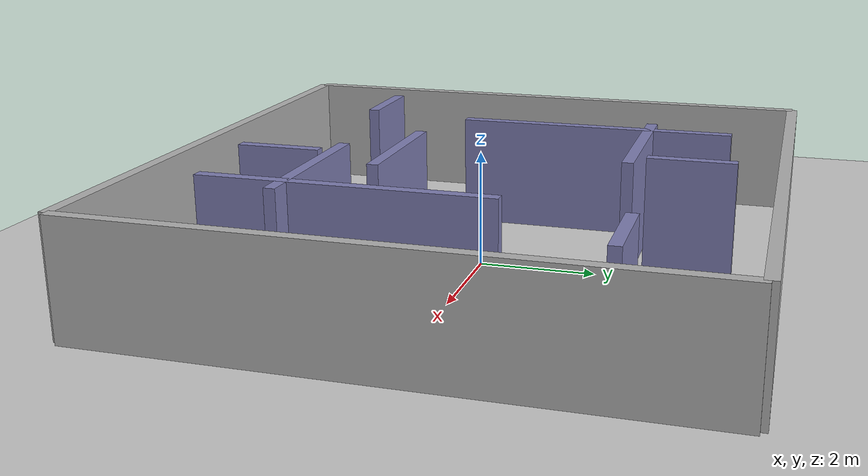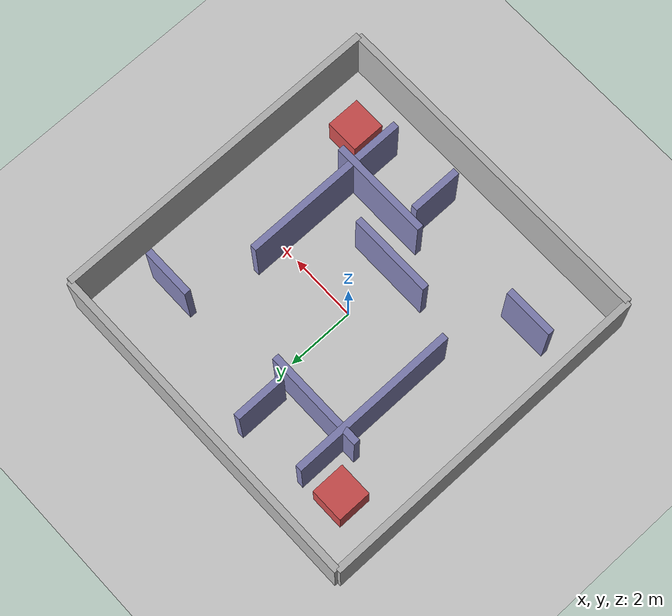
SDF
<?xml version="1.0" ?>
<sdf version="1.6">
  <world name="hallway_maze">

    <!-- Physics settings -->
    <physics type="ode">
      <real_time_update_rate>1000.0</real_time_update_rate>
      <max_step_size>0.001</max_step_size>
      <real_time_factor>1</real_time_factor>
    </physics>

    <!-- Lighting -->
    <include>
      <uri>model://sun</uri>
    </include>

    <!-- Ground plane -->
    <include>
      <uri>model://ground_plane</uri>
    </include>

    <!-- Outer walls - forming a square perimeter (10m x 10m) -->
    <!-- North wall -->
    <model name="wall_north">
      <pose>0 5 1 0 0 0</pose>
      <static>true</static>
      <link name="link">
        <collision name="collision">
          <geometry>
            <box>
              <size>10 0.2 2</size>
            </box>
          </geometry>
        </collision>
        <visual name="visual">
          <geometry>
            <box>
              <size>10 0.2 2</size>
            </box>
          </geometry>
          <material>
            <ambient>0.7 0.7 0.7 1</ambient>
            <diffuse>0.7 0.7 0.7 1</diffuse>
          </material>
        </visual>
      </link>
    </model>

    <!-- South wall -->
    <model name="wall_south">
      <pose>0 -5 1 0 0 0</pose>
      <static>true</static>
      <link name="link">
        <collision name="collision">
          <geometry>
            <box>
              <size>10 0.2 2</size>
            </box>
          </geometry>
        </collision>
        <visual name="visual">
          <geometry>
            <box>
              <size>10 0.2 2</size>
            </box>
          </geometry>
          <material>
            <ambient>0.7 0.7 0.7 1</ambient>
            <diffuse>0.7 0.7 0.7 1</diffuse>
          </material>
        </visual>
      </link>
    </model>

    <!-- East wall -->
    <model name="wall_east">
      <pose>5 0 1 0 0 0</pose>
      <static>true</static>
      <link name="link">
        <collision name="collision">
          <geometry>
            <box>
              <size>0.2 10 2</size>
            </box>
          </geometry>
        </collision>
        <visual name="visual">
          <geometry>
            <box>
              <size>0.2 10 2</size>
            </box>
          </geometry>
          <material>
            <ambient>0.7 0.7 0.7 1</ambient>
            <diffuse>0.7 0.7 0.7 1</diffuse>
          </material>
        </visual>
      </link>
    </model>

    <!-- West wall -->
    <model name="wall_west">
      <pose>-5 0 1 0 0 0</pose>
      <static>true</static>
      <link name="link">
        <collision name="collision">
          <geometry>
            <box>
              <size>0.2 10 2</size>
            </box>
          </geometry>
        </collision>
        <visual name="visual">
          <geometry>
            <box>
              <size>0.2 10 2</size>
            </box>
          </geometry>
          <material>
            <ambient>0.7 0.7 0.7 1</ambient>
            <diffuse>0.7 0.7 0.7 1</diffuse>
          </material>
        </visual>
      </link>
    </model>

    <!-- Inner hallway walls creating a square maze pattern -->
    <!-- Vertical wall 1 (left side) -->
    <model name="hallway_wall_1">
      <pose>-2.5 1.5 1 0 0 0</pose>
      <static>true</static>
      <link name="link">
        <collision name="collision">
          <geometry>
            <box>
              <size>0.2 5 2</size>
            </box>
          </geometry>
        </collision>
        <visual name="visual">
          <geometry>
            <box>
              <size>0.2 5 2</size>
            </box>
          </geometry>
          <material>
            <ambient>0.5 0.5 0.7 1</ambient>
            <diffuse>0.5 0.5 0.7 1</diffuse>
          </material>
        </visual>
      </link>
    </model>

    <!-- Vertical wall 2 (right side) -->
    <model name="hallway_wall_2">
      <pose>2.5 -1.5 1 0 0 0</pose>
      <static>true</static>
      <link name="link">
        <collision name="collision">
          <geometry>
            <box>
              <size>0.2 5 2</size>
            </box>
          </geometry>
        </collision>
        <visual name="visual">
          <geometry>
            <box>
              <size>0.2 5 2</size>
            </box>
          </geometry>
          <material>
            <ambient>0.5 0.5 0.7 1</ambient>
            <diffuse>0.5 0.5 0.7 1</diffuse>
          </material>
        </visual>
      </link>
    </model>

    <!-- Horizontal wall 1 (top) -->
    <model name="hallway_wall_3">
      <pose>-1.5 2.5 1 0 0 0</pose>
      <static>true</static>
      <link name="link">
        <collision name="collision">
          <geometry>
            <box>
              <size>3 0.2 2</size>
            </box>
          </geometry>
        </collision>
        <visual name="visual">
          <geometry>
            <box>
              <size>3 0.2 2</size>
            </box>
          </geometry>
          <material>
            <ambient>0.5 0.5 0.7 1</ambient>
            <diffuse>0.5 0.5 0.7 1</diffuse>
          </material>
        </visual>
      </link>
    </model>

    <!-- Horizontal wall 2 (bottom) -->
    <model name="hallway_wall_4">
      <pose>1.5 -2.5 1 0 0 0</pose>
      <static>true</static>
      <link name="link">
        <collision name="collision">
          <geometry>
            <box>
              <size>3 0.2 2</size>
            </box>
          </geometry>
        </collision>
        <visual name="visual">
          <geometry>
            <box>
              <size>3 0.2 2</size>
            </box>
          </geometry>
          <material>
            <ambient>0.5 0.5 0.7 1</ambient>
            <diffuse>0.5 0.5 0.7 1</diffuse>
          </material>
        </visual>
      </link>
    </model>

    <!-- Center obstacle wall (horizontal) -->
    <model name="hallway_wall_5">
      <pose>0 -1.5 1 0 0 0</pose>
      <static>true</static>
      <link name="link">
        <collision name="collision">
          <geometry>
            <box>
              <size>2.5 0.2 2</size>
            </box>
          </geometry>
        </collision>
        <visual name="visual">
          <geometry>
            <box>
              <size>2.5 0.2 2</size>
            </box>
          </geometry>
          <material>
            <ambient>0.5 0.5 0.7 1</ambient>
            <diffuse>0.5 0.5 0.7 1</diffuse>
          </material>
        </visual>
      </link>
    </model>

    <!-- Additional short walls for complexity -->
    <model name="hallway_wall_6">
      <pose>-3.5 -3 1 0 0 0</pose>
      <static>true</static>
      <link name="link">
        <collision name="collision">
          <geometry>
            <box>
              <size>1.5 0.2 2</size>
            </box>
          </geometry>
        </collision>
        <visual name="visual">
          <geometry>
            <box>
              <size>1.5 0.2 2</size>
            </box>
          </geometry>
          <material>
            <ambient>0.5 0.5 0.7 1</ambient>
            <diffuse>0.5 0.5 0.7 1</diffuse>
          </material>
        </visual>
      </link>
    </model>

    <model name="hallway_wall_7">
      <pose>3.5 3 1 0 0 0</pose>
      <static>true</static>
      <link name="link">
        <collision name="collision">
          <geometry>
            <box>
              <size>1.5 0.2 2</size>
            </box>
          </geometry>
        </collision>
        <visual name="visual">
          <geometry>
            <box>
              <size>1.5 0.2 2</size>
            </box>
          </geometry>
          <material>
            <ambient>0.5 0.5 0.7 1</ambient>
            <diffuse>0.5 0.5 0.7 1</diffuse>
          </material>
        </visual>
      </link>
    </model>

    <!-- Vertical short walls -->
    <model name="hallway_wall_8">
      <pose>-0.5 3.5 1 0 0 0</pose>
      <static>true</static>
      <link name="link">
        <collision name="collision">
          <geometry>
            <box>
              <size>0.2 1.5 2</size>
            </box>
          </geometry>
        </collision>
        <visual name="visual">
          <geometry>
            <box>
              <size>0.2 1.5 2</size>
            </box>
          </geometry>
          <material>
            <ambient>0.5 0.5 0.7 1</ambient>
            <diffuse>0.5 0.5 0.7 1</diffuse>
          </material>
        </visual>
      </link>
    </model>

    <model name="hallway_wall_9">
      <pose>0.5 -3.5 1 0 0 0</pose>
      <static>true</static>
      <link name="link">
        <collision name="collision">
          <geometry>
            <box>
              <size>0.2 1.5 2</size>
            </box>
          </geometry>
        </collision>
        <visual name="visual">
          <geometry>
            <box>
              <size>0.2 1.5 2</size>
            </box>
          </geometry>
          <material>
            <ambient>0.5 0.5 0.7 1</ambient>
            <diffuse>0.5 0.5 0.7 1</diffuse>
          </material>
        </visual>
      </link>
    </model>

    <!-- Corner obstacles for variety -->
    <model name="corner_obstacle_1">
      <pose>-3.5 3.5 0.5 0 0 0</pose>
      <static>true</static>
      <link name="link">
        <collision name="collision">
          <geometry>
            <box>
              <size>1 1 1</size>
            </box>
          </geometry>
        </collision>
        <visual name="visual">
          <geometry>
            <box>
              <size>1 1 1</size>
            </box>
          </geometry>
          <material>
            <ambient>0.8 0.3 0.3 1</ambient>
            <diffuse>0.8 0.3 0.3 1</diffuse>
          </material>
        </visual>
      </link>
    </model>

    <model name="corner_obstacle_2">
      <pose>3.5 -3.5 0.5 0 0 0</pose>
      <static>true</static>
      <link name="link">
        <collision name="collision">
          <geometry>
            <box>
              <size>1 1 1</size>
            </box>
          </geometry>
        </collision>
        <visual name="visual">
          <geometry>
            <box>
              <size>1 1 1</size>
            </box>
          </geometry>
          <material>
            <ambient>0.8 0.3 0.3 1</ambient>
            <diffuse>0.8 0.3 0.3 1</diffuse>
          </material>
        </visual>
      </link>
    </model>

    <!-- Scene settings -->
    <scene>
      <ambient>0.4 0.4 0.4 1</ambient>
      <background>0.7 0.7 0.7 1</background>
      <shadows>true</shadows>
    </scene>

    <gui fullscreen='0'>
      <camera name='user_camera'>
        <pose>0 -12 10 0 0.5 1.57</pose>
        <view_controller>orbit</view_controller>
      </camera>
    </gui>

  </world>
</sdf>
